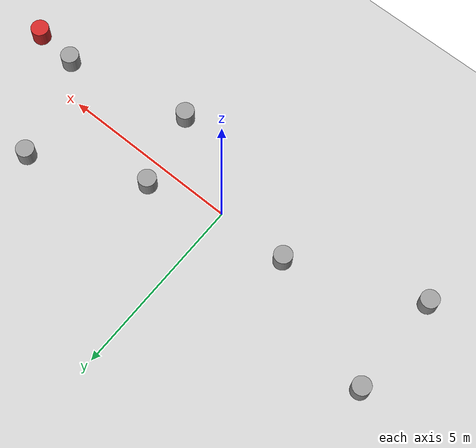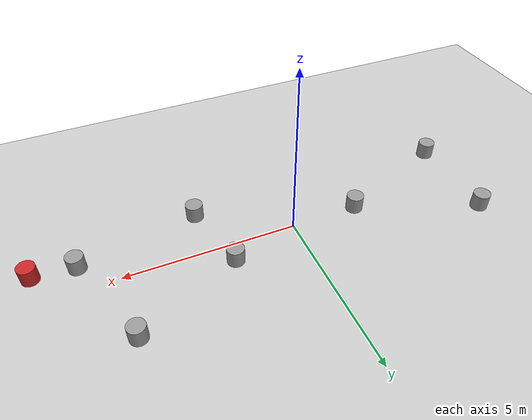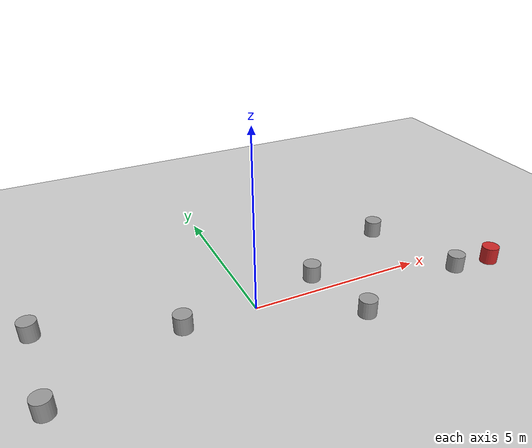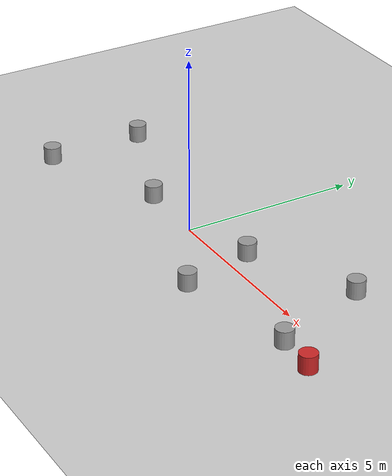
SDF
<sdf version='1.7'>
  <world name='side_static_dynamic_world'>
    <gravity>0 0 -9.8</gravity>
    <magnetic_field>6e-06 2.3e-05 -4.2e-05</magnetic_field>
    <atmosphere type='adiabatic'/>
    <physics name='default_physics' default='1' type='ode'>
      <max_step_size>0.001</max_step_size>
      <real_time_factor>1</real_time_factor>
      <real_time_update_rate>1000</real_time_update_rate>
    </physics>
    <scene>
      <ambient>0.4 0.4 0.4 1</ambient>
      <background>0.8 0.8 0.8 1</background>
      <shadows>1</shadows>
    </scene>
    <include>
      <uri>model://sun</uri>
    </include>
    <include>
      <uri>model://ground_plane</uri>
    </include>

    <model name='static_left_0'>
      <static>true</static>
      <pose>-5.5 1.4 0.25 0 0 0</pose>
      <link name='link'>
        <collision name='collision'>
          <geometry>
            <cylinder>
              <radius>0.25</radius>
              <length>0.5</length>
            </cylinder>
          </geometry>
        </collision>
        <visual name='visual'>
          <geometry>
            <cylinder>
              <radius>0.25</radius>
              <length>0.5</length>
            </cylinder>
          </geometry>
          <material>
            <script>
              <name>Gazebo/Grey</name>
              <uri>file://media/materials/scripts/gazebo.material</uri>
            </script>
          </material>
        </visual>
      </link>
    </model>

    <model name='static_left_1'>
      <static>true</static>
      <pose>2.0 0.6 0.25 0 0 0</pose>
      <link name='link'>
        <collision name='collision'>
          <geometry>
            <cylinder>
              <radius>0.25</radius>
              <length>0.5</length>
            </cylinder>
          </geometry>
        </collision>
        <visual name='visual'>
          <geometry>
            <cylinder>
              <radius>0.25</radius>
              <length>0.5</length>
            </cylinder>
          </geometry>
          <material>
            <script>
              <name>Gazebo/Grey</name>
              <uri>file://media/materials/scripts/gazebo.material</uri>
            </script>
          </material>
        </visual>
      </link>
    </model>

    <model name='static_right_0'>
      <static>true</static>
      <pose>-5.5 -1.4 0.25 0 0 0</pose>
      <link name='link'>
        <collision name='collision'>
          <geometry>
            <cylinder>
              <radius>0.25</radius>
              <length>0.5</length>
            </cylinder>
          </geometry>
        </collision>
        <visual name='visual'>
          <geometry>
            <cylinder>
              <radius>0.25</radius>
              <length>0.5</length>
            </cylinder>
          </geometry>
          <material>
            <script>
              <name>Gazebo/Grey</name>
              <uri>file://media/materials/scripts/gazebo.material</uri>
            </script>
          </material>
        </visual>
      </link>
    </model>

    <model name='static_mid_1'>
      <static>true</static>
      <pose>-2.0 0 0.25 0 0 0</pose>
      <link name='link'>
        <collision name='collision'>
          <geometry>
            <cylinder>
              <radius>0.25</radius>
              <length>0.5</length>
            </cylinder>
          </geometry>
        </collision>
        <visual name='visual'>
          <geometry>
            <cylinder>
              <radius>0.25</radius>
              <length>0.5</length>
            </cylinder>
          </geometry>
          <material>
            <script>
              <name>Gazebo/Grey</name>
              <uri>file://media/materials/scripts/gazebo.material</uri>
            </script>
          </material>
        </visual>
      </link>
    </model>

    <model name='static_right_1'>
      <static>true</static>
      <pose>2.5 -1.5 0.25 0 0 0</pose>
      <link name='link'>
        <collision name='collision'>
          <geometry>
            <cylinder>
              <radius>0.25</radius>
              <length>0.5</length>
            </cylinder>
          </geometry>
        </collision>
        <visual name='visual'>
          <geometry>
            <cylinder>
              <radius>0.25</radius>
              <length>0.5</length>
            </cylinder>
          </geometry>
          <material>
            <script>
              <name>Gazebo/Grey</name>
              <uri>file://media/materials/scripts/gazebo.material</uri>
            </script>
          </material>
        </visual>
      </link>
    </model>

    <model name='static_left_2'>
      <static>true</static>
      <pose>5.0 2.0 0.25 0 0 0</pose>
      <link name='link'>
        <collision name='collision'>
          <geometry>
            <cylinder>
              <radius>0.25</radius>
              <length>0.5</length>
            </cylinder>
          </geometry>
        </collision>
        <visual name='visual'>
          <geometry>
            <cylinder>
              <radius>0.25</radius>
              <length>0.5</length>
            </cylinder>
          </geometry>
          <material>
            <script>
              <name>Gazebo/Grey</name>
              <uri>file://media/materials/scripts/gazebo.material</uri>
            </script>
          </material>
        </visual>
      </link>
    </model>

    <model name='static_right_2'>
      <static>true</static>
      <pose>6.0 -0.8 0.25 0 0 0</pose>
      <link name='link'>
        <collision name='collision'>
          <geometry>
            <cylinder>
              <radius>0.25</radius>
              <length>0.5</length>
            </cylinder>
          </geometry>
        </collision>
        <visual name='visual'>
          <geometry>
            <cylinder>
              <radius>0.25</radius>
              <length>0.5</length>
            </cylinder>
          </geometry>
          <material>
            <script>
              <name>Gazebo/Grey</name>
              <uri>file://media/materials/scripts/gazebo.material</uri>
            </script>
          </material>
        </visual>
      </link>
    </model>

    <model name='cylinder_0'>
      <static>false</static>
      <allow_auto_disable>1</allow_auto_disable>
      <pose>7.2 -0.9 0.25 0 0 0</pose>
      <link name='link'>
        <inertial>
          <mass>0.128591</mass>
          <inertia>
            <ixx>0.00474038</ixx>
            <ixy>0</ixy>
            <ixz>0</ixz>
            <iyy>0.00474038</iyy>
            <iyz>0</iyz>
            <izz>0.00414085</izz>
          </inertia>
        </inertial>
        <collision name='collision'>
          <geometry>
            <cylinder>
              <radius>0.25</radius>
              <length>0.5</length>
            </cylinder>
          </geometry>
        </collision>
        <visual name='visual'>
          <geometry>
            <cylinder>
              <radius>0.25</radius>
              <length>0.5</length>
            </cylinder>
          </geometry>
          <material>
            <script>
              <name>Gazebo/RedBright</name>
              <uri>file://media/materials/scripts/gazebo.material</uri>
            </script>
          </material>
        </visual>
        <gravity>1</gravity>
        <enable_wind>0</enable_wind>
      </link>
    </model>
  </world>
</sdf>
